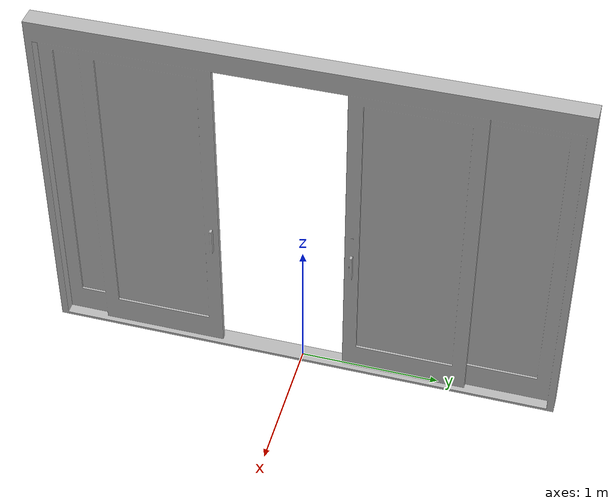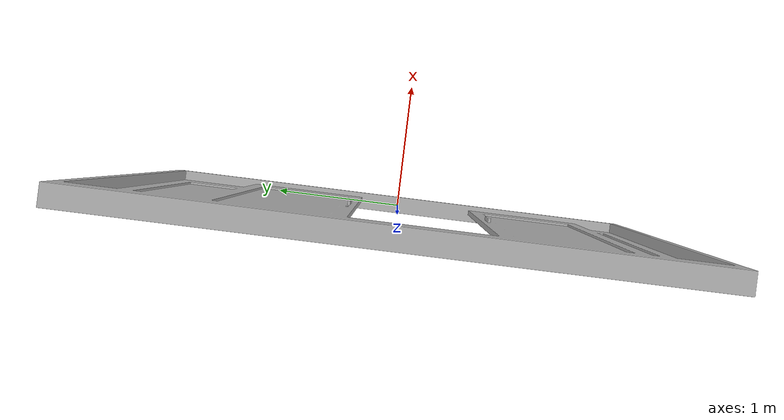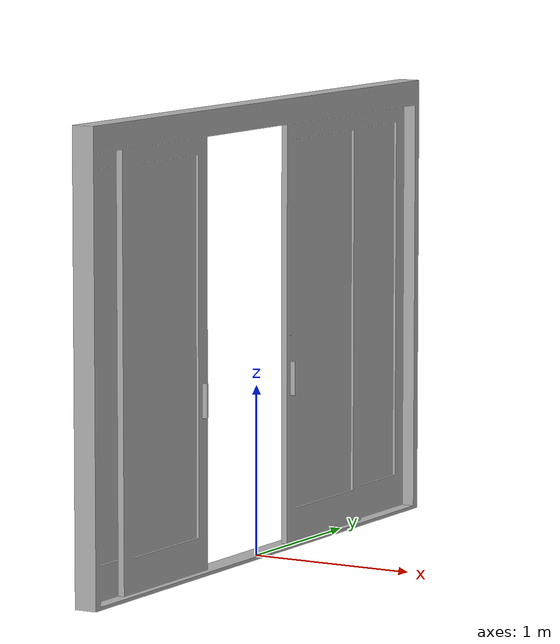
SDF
<?xml version='1.0'?>
<sdf version='1.4'>
  <model name='756'>
    <pose>0 0 0 0 0 0</pose>
    <static>true</static>
    <link name='link'>
      <collision name='collision'>
        <pose>0 0 0 0 0 0</pose>
        <geometry>
          <box>
            <size>0.135 3.7 2</size>
          </box>
        </geometry>
      </collision>
      <visual name='visual'>
        <pose>0 0 0 0 0 0</pose>
        <geometry>
          <mesh><uri>model://756/756.dae</uri></mesh>
        </geometry>
      </visual>
    </link>
  </model>
</sdf>
